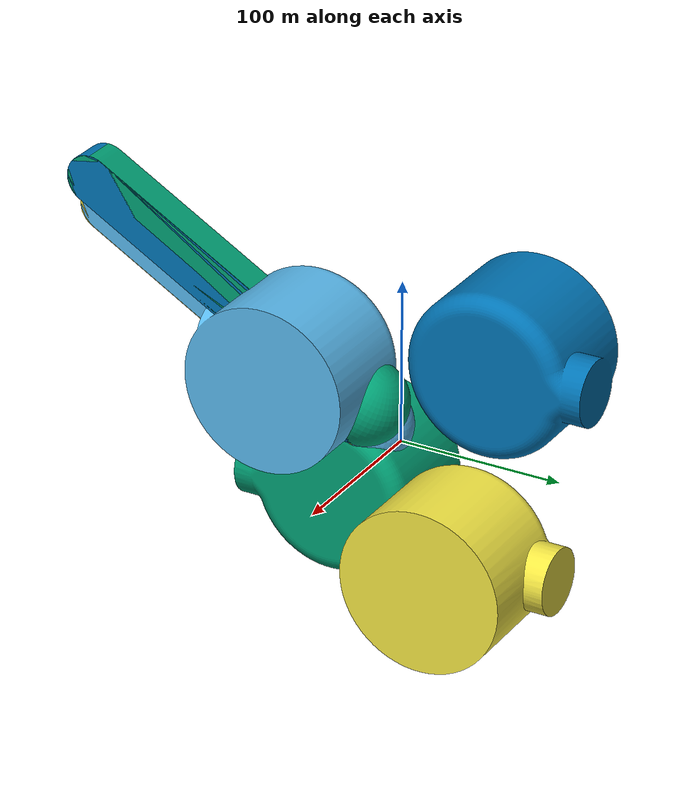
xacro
<?xml version="1.0"?>
<robot name="orthrus"
  xmlns:xacro="http://ros.org/wiki/xacro">

  <xacro:property name="meshes_folder" value="file:///$(find orthrus_gazebo)/models/orthrus/meshes" />

  <link name="body">
    <visual>
      <origin xyz="-0.10 0.1385 -0.05" rpy="${pi/2} 0 0" />
      <geometry>
        <mesh filename="${meshes_folder}/body.STL"/>
      </geometry>
    </visual>
    <collision>
      <origin xyz="-0.10 0.1385 -0.05" rpy="${pi/2} 0 0" />
      <geometry>
        <mesh filename="${meshes_folder}/body.STL"/>
      </geometry>
    </collision>
    <inertial>
      <mass value="7"/>
      <inertia ixx="4.9950395" ixy="0" ixz="0" iyy="2.4616377" iyz="0" izz="6.4183150" />
    </inertial>
  </link>

  <gazebo reference="body">
    <visual>
      <material>
        <ambient>0 0.8 0 1</ambient>
        <diffuse>0 0.8 0 1</diffuse>
        <specular>0 0.8 0 1</specular>
      </material>
    </visual>
  </gazebo>

  <xacro:macro name="hip" params="prefix">
    <link name="hip_${prefix}">
      <visual>
        <origin xyz="-0.02 -0.05 -0.05" rpy="0 0 0" />
        <geometry>
          <mesh filename="${meshes_folder}/hip.STL"/>
        </geometry>
      </visual>
      <collision>
        <origin xyz="-0.02 -0.05 -0.05" rpy="0 0 0" />
        <geometry>
          <mesh filename="${meshes_folder}/hip.STL"/>
        </geometry>
      </collision>
      <inertial>
        <mass value="0.7"/>
        <inertia ixx="0.0904981" ixy="0" ixz="-0.0000480" iyy=" 0.0917319" iyz="0" izz="0.0857923" />
      </inertial>
    </link>

    <gazebo reference="hip_${prefix}">
      <visual>
        <material>
          <ambient>0 0.8 0 1</ambient>
          <diffuse>0 0.8 0 1</diffuse>
          <specular>0 0.8 0 1</specular>
        </material>
      </visual>
    </gazebo>

    <joint name="hip_${prefix}_joint" type="revolute">
      <axis xyz="0 0 1"/>
      <parent link="body"/>
      <child link="hip_${prefix}"/>
      <dynamics damping="0.1" friction="0.01"/>
      <limit effort="35.0" lower="-${pi/2}" upper="${pi/2}" velocity="${pi}"/>
      <xacro:if value="${prefix == 'LF'}">
        <origin xyz="-0.05 0.20 0" rpy="${pi/2} ${pi} 0" />
      </xacro:if>
      <xacro:if value="${prefix == 'LB'}">
        <origin xyz="-0.05 -0.20 0" rpy="-${pi/2} ${pi} 0" />
      </xacro:if>
      <xacro:if value="${prefix == 'RB'}">
        <origin xyz="0.05 -0.20 0" rpy="${pi/2} ${pi} ${pi}" />
      </xacro:if>
      <xacro:if value="${prefix == 'RF'}">
        <origin xyz="0.05 0.20 0" rpy="-${pi/2} ${pi} ${pi}" />
      </xacro:if>

    </joint>
  </xacro:macro>

  <xacro:hip prefix="RF"/>
  <xacro:hip prefix="LF"/>
  <xacro:hip prefix="RB"/>
  <xacro:hip prefix="LB"/>

  <xacro:macro name="leg1" params="prefix">
    <link name="leg1_${prefix}">
      <visual>
        <origin xyz="0 -0.2 -0.05" rpy="0 0 0" />
        <geometry>
          <mesh filename="${meshes_folder}/leg1.STL"/>
        </geometry>
      </visual>
      <collision>
        <origin xyz="0 -0.2 -0.05" rpy="0 0 0" />
        <geometry>
          <mesh filename="${meshes_folder}/leg1.STL"/>
        </geometry>
      </collision>
      <inertial>
        <mass value="1"/>
        <inertia ixx="0.4329464" ixy="-0.0830239" ixz=" -0.0000001" iyy="0.1503071" iyz="0.0000001" izz="0.4817994" />
      </inertial>
    </link>

    <gazebo reference="leg1_${prefix}">
      <visual>
        <material>
          <ambient>0 0.8 0 1</ambient>
          <diffuse>0 0.8 0 1</diffuse>
          <specular>0 0.8 0 1</specular>
        </material>
      </visual>
    </gazebo>

    <joint name="leg1_${prefix}_joint" type="revolute">
      <axis xyz="1 0 0"/>
      <parent link="hip_${prefix}"/>
      <child link="leg1_${prefix}"/>
      <dynamics damping="0.1" friction="0.01"/>
      <limit effort="35.0" lower="-${pi*2/3}" upper="${pi*2/3}" velocity="${pi}"/>
      <xacro:if value="${prefix == 'LF'}">
        <origin xyz="0.05 0 0" rpy="-${pi/2} 0 0" />
      </xacro:if>
      <xacro:if value="${prefix == 'LB'}">
        <origin xyz="0.05 0 0" rpy="${pi/2} 0 0" />
      </xacro:if>
      <xacro:if value="${prefix == 'RB'}">
        <origin xyz="0.05 0 0" rpy="${pi/2} 0 0" />
      </xacro:if>
      <xacro:if value="${prefix == 'RF'}">
        <origin xyz="0.05 0 0" rpy="-${pi/2} 0 0" />
      </xacro:if>

    </joint>
  </xacro:macro>

  <xacro:leg1 prefix="RF"/>
  <xacro:leg1 prefix="LF"/>
  <xacro:leg1 prefix="RB"/>
  <xacro:leg1 prefix="LB"/>

  <xacro:macro name="leg2" params="prefix">
    <link name="leg2_${prefix}">
      <visual>
        <origin xyz="-0.025 -0.025 -0.225" rpy="0 0 0" />
        <geometry>
          <mesh filename="${meshes_folder}/leg2.STL"/>
        </geometry>
      </visual>
      <collision>
        <origin xyz="-0.025 -0.025 -0.225" rpy="0 0 0" />
        <geometry>
          <mesh filename="${meshes_folder}/leg2.STL"/>
        </geometry>
      </collision>
      <inertial>
        <mass value="0.2"/>
        <inertia ixx="0.4201680" ixy="0" ixz="0" iyy="0.4196489" iyz="0" izz="0.0031965" />
      </inertial>
    </link>

    <gazebo reference="leg2_${prefix}">
      <visual>
        <material>
          <ambient>0 0.8 0 1</ambient>
          <diffuse>0 0.8 0 1</diffuse>
          <specular>0 0.8 0 1</specular>
        </material>
      </visual>
    </gazebo>

    <joint name="leg2_${prefix}_joint" type="revolute">
      <axis xyz="1 0 0"/>
      <parent link="leg1_${prefix}"/>
      <child link="leg2_${prefix}"/>
      <dynamics damping="0.1" friction="0.01"/>

      <xacro:if value="${prefix == 'LF'}">
        <origin xyz="0.035 -0.18 0" rpy="${pi*2/3} 0 0" />
        <limit effort="35.0" lower="-${pi*1/12}" upper="${pi*2/3}" velocity="${pi}"/>
      </xacro:if>
      <xacro:if value="${prefix == 'RF'}">
        <origin xyz="0.035 -0.18 0" rpy="${pi*1/3} 0 0" />
        <limit effort="35.0" lower="-${pi*2/3}" upper="${pi*1/12}" velocity="${pi}"/>
      </xacro:if>
      <xacro:if value="${prefix == 'RB'}">
        <origin xyz="0.035 -0.18 0" rpy="${pi*1/3} 0 0" />
        <limit effort="35.0" lower="-${pi*2/3}" upper="${pi*1/12}" velocity="${pi}"/>
      </xacro:if>
      <xacro:if value="${prefix == 'LB'}">
        <origin xyz="0.035 -0.18 0" rpy="${pi*2/3} 0 0" />
        <limit effort="35.0" lower="-${pi*1/12}" upper="${pi*2/3}" velocity="${pi}"/>
      </xacro:if>

    </joint>
  </xacro:macro>

  <xacro:leg2 prefix="LF"/>
  <xacro:leg2 prefix="RF"/>
  <xacro:leg2 prefix="LB"/>
  <xacro:leg2 prefix="RB"/>

  <xacro:macro name="ros2_hip_joint" params="prefix">
    <joint name="hip_${prefix}_joint">
      <command_interface name="effort">
        <param name="min">-35</param>
        <param name="max">35</param>
      </command_interface>
      <state_interface name="position">
        <param name="initial_value">1.0</param>
      </state_interface>
      <state_interface name="velocity"/>
      <state_interface name="effort"/>
    </joint>
  </xacro:macro>

  <xacro:macro name="ros2_leg1_joint" params="prefix">
    <joint name="leg1_${prefix}_joint">
      <command_interface name="effort">
        <param name="min">-35</param>
        <param name="max">35</param>
      </command_interface>
      <state_interface name="position">
        <param name="initial_value">1.0</param>
      </state_interface>
      <state_interface name="velocity"/>
      <state_interface name="effort"/>
    </joint>
  </xacro:macro>

  <xacro:macro name="ros2_leg2_joint" params="prefix">
    <joint name="leg2_${prefix}_joint">
      <command_interface name="effort">
        <param name="min">-35</param>
        <param name="max">35</param>
      </command_interface>
      <state_interface name="position">
        <param name="initial_value">1.0</param>
      </state_interface>
      <state_interface name="velocity"/>
      <state_interface name="effort"/>
    </joint>
  </xacro:macro>

  <ros2_control name="IgnitionSystem" type="system">
    <hardware>
      <plugin>ign_ros2_control/IgnitionSystem</plugin>
    </hardware>

    <xacro:ros2_hip_joint prefix="RF"/>
    <xacro:ros2_hip_joint prefix="LF"/>
    <xacro:ros2_hip_joint prefix="RB"/>
    <xacro:ros2_hip_joint prefix="LB"/>

    <xacro:ros2_leg1_joint prefix="RF"/>
    <xacro:ros2_leg1_joint prefix="LF"/>
    <xacro:ros2_leg1_joint prefix="RB"/>
    <xacro:ros2_leg1_joint prefix="LB"/>

    <xacro:ros2_leg2_joint prefix="RF"/>
    <xacro:ros2_leg2_joint prefix="LF"/>
    <xacro:ros2_leg2_joint prefix="RB"/>
    <xacro:ros2_leg2_joint prefix="LB"/>

  </ros2_control>

  <gazebo>
    <plugin filename="ign_ros2_control-system" name="ign_ros2_control::IgnitionROS2ControlPlugin">
      <parameters>$(find orthrus_ign)/config/orthrus.yaml</parameters>
    </plugin>
  </gazebo>
</robot>
